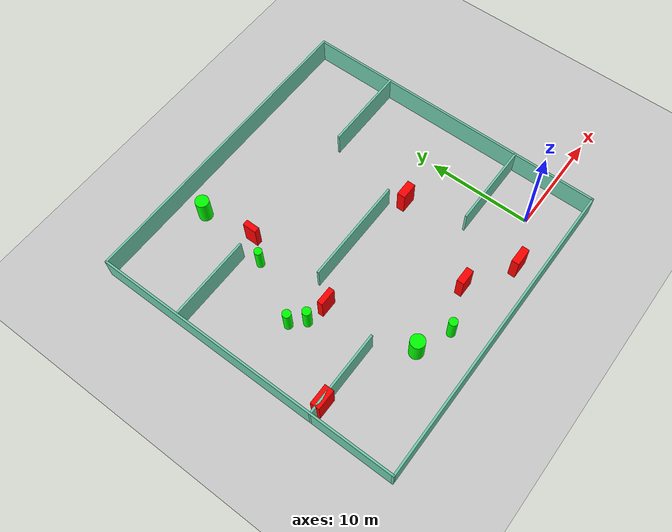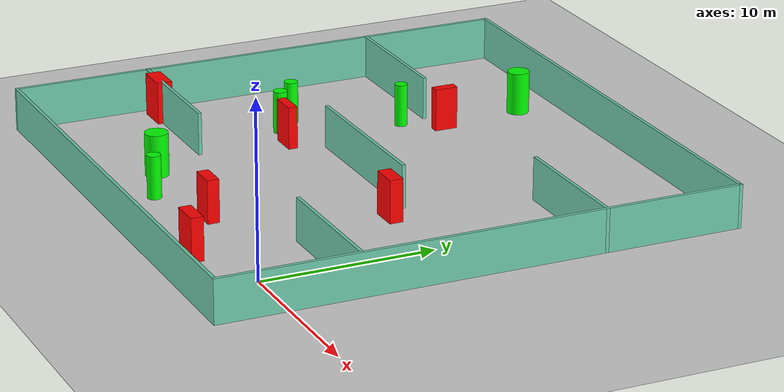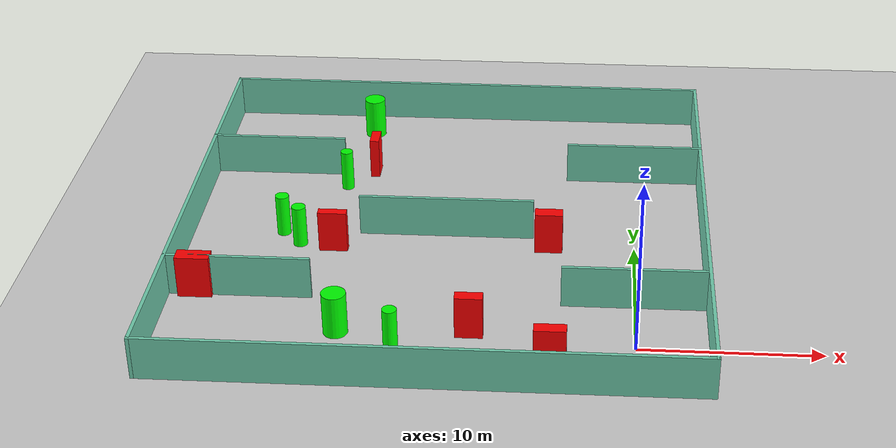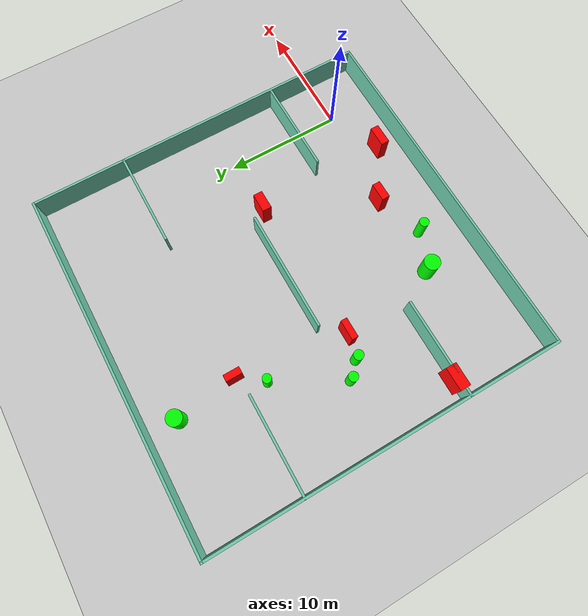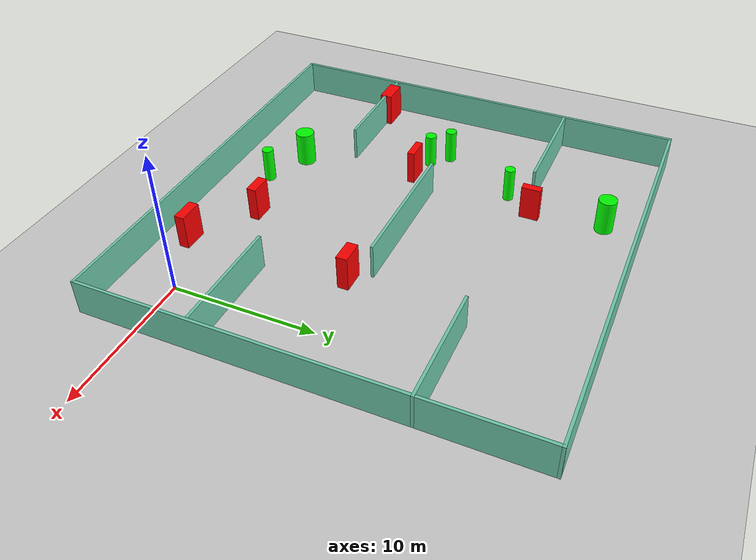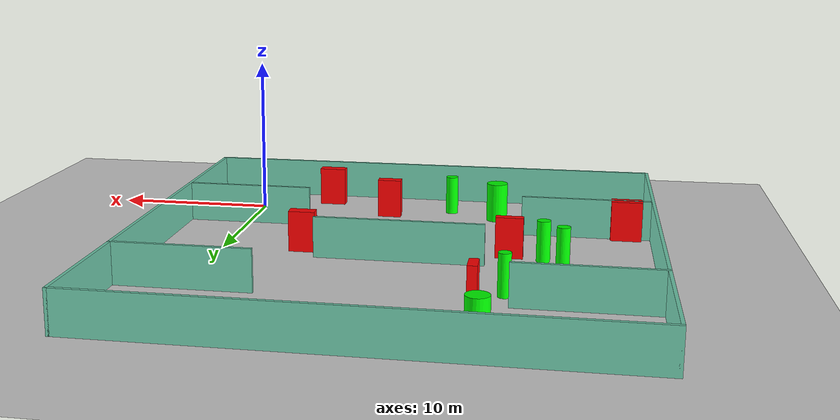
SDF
<sdf version="1.7">
 <world name="default">
  <light name="sun" type="directional">
   <pose>0 0 10 0 -0 0</pose>
   <diffuse>0.8 0.8 0.8 1</diffuse>
   <specular>0.2 0.2 0.2 1</specular>
   <attenuation>
    <range>1000</range>
    <constant>0.9</constant>
    <linear>0.01</linear>
    <quadratic>0.001</quadratic>
   </attenuation>
   <direction>-0.5 0.1 -0.9</direction>
   <spot><inner_angle>0</inner_angle><outer_angle>0</outer_angle><falloff>0</falloff></spot>
  </light>
  <model name="ground_plane">
   <static>1</static>
   <link name="link">
    <collision name="collision">
     <geometry><plane><normal>0 0 1</normal><size>100 100</size></plane></geometry>
     <surface>
      <contact><collide_bitmask>65535</collide_bitmask></contact>
      <friction><ode><mu>100</mu><mu2>50</mu2></ode></friction>
     </surface>
    </collision>
    <visual name="visual">
     <cast_shadows>0</cast_shadows>
     <geometry><plane><normal>0 0 1</normal><size>100 100</size></plane></geometry>
     <material>
      <script><uri>file://media/materials/scripts/gazebo.material</uri><name>Gazebo/Grey</name></script>
     </material>
    </visual>
   </link>
  </model>
  <gravity>0 0 -9.8</gravity>
  <magnetic_field>6e-06 2.3e-05 -4.2e-05</magnetic_field>
  <atmosphere type="adiabatic"/>
  <physics type="ode">
   <max_step_size>0.001</max_step_size>
   <real_time_factor>1</real_time_factor>
   <real_time_update_rate>1000</real_time_update_rate>
  </physics>
  <scene><ambient>0.4 0.4 0.4 1</ambient><background>0.7 0.7 0.7 1</background><shadows>1</shadows></scene>
  <spherical_coordinates>
   <surface_model>EARTH_WGS84</surface_model>
   <latitude_deg>0</latitude_deg>
   <longitude_deg>0</longitude_deg>
   <elevation>0</elevation>
   <heading_deg>0</heading_deg>
  </spherical_coordinates>
  <model name="my_base_walls">
   <link name="Wall_10">
    <collision name="Wall_10_Collision">
     <geometry><box><size>8.2 0.2 2.5</size></box></geometry>
     <pose>0 0 1.25 0 -0 0</pose>
    </collision>
    <visual name="Wall_10_Visual">
     <pose>0 0 1.25 0 -0 0</pose>
     <geometry><box><size>8.2 0.2 2.5</size></box></geometry>
     <material>
      <script><uri>file://media/materials/scripts/gazebo.material</uri><name>Gazebo/Grey</name></script>
      <ambient>0.435294 0.796078 0.67451 1</ambient>
     </material>
     <meta><layer>0</layer></meta>
    </visual>
    <pose>-11 -7 0 0 -0 0</pose>
   </link>
   <link name="Wall_12">
    <collision name="Wall_12_Collision">
     <geometry><box><size>8.2 0.2 2.5</size></box></geometry>
     <pose>0 0 1.25 0 -0 0</pose>
    </collision>
    <visual name="Wall_12_Visual">
     <pose>0 0 1.25 0 -0 0</pose>
     <geometry><box><size>8.2 0.2 2.5</size></box></geometry>
     <material>
      <script><uri>file://media/materials/scripts/gazebo.material</uri><name>Gazebo/Grey</name></script>
      <ambient>0.435294 0.796078 0.67451 1</ambient>
     </material>
     <meta><layer>0</layer></meta>
    </visual>
    <pose>-11 7 0 0 -0 0</pose>
   </link>
   <link name="Wall_14">
    <collision name="Wall_14_Collision">
     <geometry><box><size>8.2 0.2 2.5</size></box></geometry>
     <pose>0 0 1.25 0 -0 0</pose>
    </collision>
    <visual name="Wall_14_Visual">
     <pose>0 0 1.25 0 -0 0</pose>
     <geometry><box><size>8.2 0.2 2.5</size></box></geometry>
     <material>
      <script><uri>file://media/materials/scripts/gazebo.material</uri><name>Gazebo/Grey</name></script>
      <ambient>0.435294 0.796078 0.67451 1</ambient>
     </material>
     <meta><layer>0</layer></meta>
    </visual>
    <pose>11 7 0 0 -0 3.14159</pose>
   </link>
   <link name="Wall_16">
    <collision name="Wall_16_Collision">
     <geometry><box><size>10.2 0.2 2.5</size></box></geometry>
     <pose>0 0 1.25 0 -0 0</pose>
    </collision>
    <visual name="Wall_16_Visual">
     <pose>0 0 1.25 0 -0 0</pose>
     <geometry><box><size>10.2 0.2 2.5</size></box></geometry>
     <material>
      <script><uri>file://media/materials/scripts/gazebo.material</uri><name>Gazebo/Grey</name></script>
      <ambient>0.435294 0.796078 0.67451 1</ambient>
     </material>
     <meta><layer>0</layer></meta>
    </visual>
    <pose>0 0 0 0 -0 3.14159</pose>
   </link>
   <link name="Wall_2">
    <collision name="Wall_2_Collision">
     <geometry><box><size>30.2 0.2 2.5</size></box></geometry>
     <pose>0 0 1.25 0 -0 0</pose>
    </collision>
    <visual name="Wall_2_Visual">
     <pose>0 0 1.25 0 -0 0</pose>
     <geometry><box><size>30.2 0.2 2.5</size></box></geometry>
     <material>
      <script><uri>file://media/materials/scripts/gazebo.material</uri><name>Gazebo/Grey</name></script>
      <ambient>0.435294 0.796078 0.67451 1</ambient>
     </material>
     <meta><layer>0</layer></meta>
    </visual>
    <pose>0 -15 0 0 -0 3.14159</pose>
   </link>
   <link name="Wall_3">
    <collision name="Wall_3_Collision">
     <geometry><box><size>30.2 0.2 2.5</size></box></geometry>
     <pose>0 0 1.25 0 -0 0</pose>
    </collision>
    <visual name="Wall_3_Visual">
     <pose>0 0 1.25 0 -0 0</pose>
     <geometry><box><size>30.2 0.2 2.5</size></box></geometry>
     <material>
      <script><uri>file://media/materials/scripts/gazebo.material</uri><name>Gazebo/Grey</name></script>
      <ambient>0.435294 0.796078 0.67451 1</ambient>
     </material>
     <meta><layer>0</layer></meta>
    </visual>
    <pose>-15 0 0 0 -0 1.5708</pose>
   </link>
   <link name="Wall_4">
    <collision name="Wall_4_Collision">
     <geometry><box><size>30.2 0.2 2.5</size></box></geometry>
     <pose>0 0 1.25 0 -0 0</pose>
    </collision>
    <visual name="Wall_4_Visual">
     <pose>0 0 1.25 0 -0 0</pose>
     <geometry><box><size>30.2 0.2 2.5</size></box></geometry>
     <material>
      <script><uri>file://media/materials/scripts/gazebo.material</uri><name>Gazebo/Grey</name></script>
      <ambient>0.435294 0.796078 0.67451 1</ambient>
     </material>
     <meta><layer>0</layer></meta>
    </visual>
    <pose>0 15 0 0 -0 0</pose>
   </link>
   <link name="Wall_6">
    <collision name="Wall_6_Collision">
     <geometry><box><size>30.2 0.2 2.5</size></box></geometry>
     <pose>0 0 1.25 0 -0 0</pose>
    </collision>
    <visual name="Wall_6_Visual">
     <pose>0 0 1.25 0 -0 0</pose>
     <geometry><box><size>30.2 0.2 2.5</size></box></geometry>
     <material>
      <script><uri>file://media/materials/scripts/gazebo.material</uri><name>Gazebo/Grey</name></script>
      <ambient>0.435294 0.796078 0.67451 1</ambient>
     </material>
     <meta><layer>0</layer></meta>
    </visual>
    <pose>15 0 0 0 -0 1.5708</pose>
   </link>
   <link name="Wall_8">
    <collision name="Wall_8_Collision">
     <geometry><box><size>8.2 0.2 2.5</size></box></geometry>
     <pose>0 0 1.25 0 -0 0</pose>
    </collision>
    <visual name="Wall_8_Visual">
     <pose>0 0 1.25 0 -0 0</pose>
     <geometry><box><size>8.2 0.2 2.5</size></box></geometry>
     <material>
      <script><uri>file://media/materials/scripts/gazebo.material</uri><name>Gazebo/Grey</name></script>
      <ambient>0.435294 0.796078 0.67451 1</ambient>
     </material>
     <meta><layer>0</layer></meta>
    </visual>
    <pose>11 -7 0 0 -0 3.14159</pose>
   </link>
   <static>1</static>
   <pose>-11 11 0 0 -0 0</pose>
  </model>
  <model name="cylinder1">
   <static>1</static>
   <link name="link">
    <inertial>
     <mass>1</mass>
     <inertia><ixx>0.5</ixx><ixy>0</ixy><ixz>0</ixz><iyy>0.5</iyy><iyz>0</iyz><izz>1</izz></inertia>
    </inertial>
    <collision name="collision">
     <geometry><cylinder><radius>0.40839275715560147</radius><length>2.5</length></cylinder></geometry>
    </collision>
    <visual name="visual">
     <geometry><cylinder><radius>0.40839275715560147</radius><length>2.5</length></cylinder></geometry>
     <material>
      <ambient>0 1 0 1</ambient>
      <diffuse>0 1 0 1</diffuse>
      <specular>0.1 0.1 0.1 1</specular>
      <emissive>0 0 0 0</emissive>
     </material>
    </visual>
   </link>
   <pose>-19.439003507530327 9.56513954556675 1.25 0 0 0</pose>
  </model>
  <model name="cylinder2">
   <static>1</static>
   <link name="link">
    <inertial>
     <mass>1</mass>
     <inertia><ixx>0.5</ixx><ixy>0</ixy><ixz>0</ixz><iyy>0.5</iyy><iyz>0</iyz><izz>1</izz></inertia>
    </inertial>
    <collision name="collision">
     <geometry><cylinder><radius>0.36764448057652344</radius><length>2.5</length></cylinder></geometry>
    </collision>
    <visual name="visual">
     <geometry><cylinder><radius>0.36764448057652344</radius><length>2.5</length></cylinder></geometry>
     <material>
      <ambient>0 1 0 1</ambient>
      <diffuse>0 1 0 1</diffuse>
      <specular>0.1 0.1 0.1 1</specular>
      <emissive>0 0 0 0</emissive>
     </material>
    </visual>
   </link>
   <pose>-17.57059554258465 16.3321591535909 1.25 0 0 0</pose>
  </model>
  <model name="cylinder3">
   <static>1</static>
   <link name="link">
    <inertial>
     <mass>1</mass>
     <inertia><ixx>0.5</ixx><ixy>0</ixy><ixz>0</ixz><iyy>0.5</iyy><iyz>0</iyz><izz>1</izz></inertia>
    </inertial>
    <collision name="collision">
     <geometry><cylinder><radius>0.39733039049471786</radius><length>2.5</length></cylinder></geometry>
    </collision>
    <visual name="visual">
     <geometry><cylinder><radius>0.39733039049471786</radius><length>2.5</length></cylinder></geometry>
     <material>
      <ambient>0 1 0 1</ambient>
      <diffuse>0 1 0 1</diffuse>
      <specular>0.1 0.1 0.1 1</specular>
      <emissive>0 0 0 0</emissive>
     </material>
    </visual>
   </link>
   <pose>-20.596170434945996 10.743337893095191 1.25 0 0 0</pose>
  </model>
  <model name="cylinder4">
   <static>1</static>
   <link name="link">
    <inertial>
     <mass>1</mass>
     <inertia><ixx>0.5</ixx><ixy>0</ixy><ixz>0</ixz><iyy>0.5</iyy><iyz>0</iyz><izz>1</izz></inertia>
    </inertial>
    <collision name="collision">
     <geometry><cylinder><radius>0.6415632302150622</radius><length>2.5</length></cylinder></geometry>
    </collision>
    <visual name="visual">
     <geometry><cylinder><radius>0.6415632302150622</radius><length>2.5</length></cylinder></geometry>
     <material>
      <ambient>0 1 0 1</ambient>
      <diffuse>0 1 0 1</diffuse>
      <specular>0.1 0.1 0.1 1</specular>
      <emissive>0 0 0 0</emissive>
     </material>
    </visual>
   </link>
   <pose>-16.714398500472598 23.475206228860554 1.25 0 0 0</pose>
  </model>
  <model name="cylinder5">
   <static>1</static>
   <link name="link">
    <inertial>
     <mass>1</mass>
     <inertia><ixx>0.5</ixx><ixy>0</ixy><ixz>0</ixz><iyy>0.5</iyy><iyz>0</iyz><izz>1</izz></inertia>
    </inertial>
    <collision name="collision">
     <geometry><cylinder><radius>0.674279702739626</radius><length>2.5</length></cylinder></geometry>
    </collision>
    <visual name="visual">
     <geometry><cylinder><radius>0.674279702739626</radius><length>2.5</length></cylinder></geometry>
     <material>
      <ambient>0 1 0 1</ambient>
      <diffuse>0 1 0 1</diffuse>
      <specular>0.1 0.1 0.1 1</specular>
      <emissive>0 0 0 0</emissive>
     </material>
    </visual>
   </link>
   <pose>-16.115023763306862 0.7065742978603411 1.25 0 0 0</pose>
  </model>
  <model name="cylinder6">
   <static>1</static>
   <link name="link">
    <inertial>
     <mass>1</mass>
     <inertia><ixx>0.5</ixx><ixy>0</ixy><ixz>0</ixz><iyy>0.5</iyy><iyz>0</iyz><izz>1</izz></inertia>
    </inertial>
    <collision name="collision">
     <geometry><cylinder><radius>0.3999003812108511</radius><length>2.5</length></cylinder></geometry>
    </collision>
    <visual name="visual">
     <geometry><cylinder><radius>0.3999003812108511</radius><length>2.5</length></cylinder></geometry>
     <material>
      <ambient>0 1 0 1</ambient>
      <diffuse>0 1 0 1</diffuse>
      <specular>0.1 0.1 0.1 1</specular>
      <emissive>0 0 0 0</emissive>
     </material>
    </visual>
   </link>
   <pose>-12.978107546553561 -0.6580832535391989 1.25 0 0 0</pose>
  </model>
  <model name="box1">
   <static>1</static>
   <link name="link">
    <inertial>
     <mass>1</mass>
     <inertia><ixx>0.083</ixx><ixy>0</ixy><ixz>0</ixz><iyy>0.083</iyy><iyz>0</iyz><izz>0.083</izz></inertia>
    </inertial>
    <collision name="collision">
     <geometry><box><size>1.653518104592965 0.532372475471234 2.5</size></box></geometry>
    </collision>
    <visual name="visual">
     <geometry><box><size>1.653518104592965 0.532372475471234 2.5</size></box></geometry>
     <material>
      <ambient>1 0 0 1</ambient>
      <diffuse>1 0 0 1</diffuse>
      <specular>0.1 0.1 0.1 1</specular>
      <emissive>0 0 0 0</emissive>
     </material>
    </visual>
    <sensor name="my_contact" type="contact">
     <contact><collision>box_collision</collision><topic>__default_topic__</topic></contact>
    </sensor>
   </link>
   <pose>-17.41379240294704 9.129357108837533 1.25 0 0 0</pose>
  </model>
  <model name="box2">
   <static>1</static>
   <link name="link">
    <inertial>
     <mass>1</mass>
     <inertia><ixx>0.083</ixx><ixy>0</ixy><ixz>0</ixz><iyy>0.083</iyy><iyz>0</iyz><izz>0.083</izz></inertia>
    </inertial>
    <collision name="collision">
     <geometry><box><size>1.9048957736020247 0.8923318630859618 2.5</size></box></geometry>
    </collision>
    <visual name="visual">
     <geometry><box><size>1.9048957736020247 0.8923318630859618 2.5</size></box></geometry>
     <material>
      <ambient>1 0 0 1</ambient>
      <diffuse>1 0 0 1</diffuse>
      <specular>0.1 0.1 0.1 1</specular>
      <emissive>0 0 0 0</emissive>
     </material>
    </visual>
    <sensor name="my_contact" type="contact">
     <contact><collision>box_collision</collision><topic>__default_topic__</topic></contact>
    </sensor>
   </link>
   <pose>-24.404228019446673 4.060362945224 1.25 0 0 0</pose>
  </model>
  <model name="box3">
   <static>1</static>
   <link name="link">
    <inertial>
     <mass>1</mass>
     <inertia><ixx>0.083</ixx><ixy>0</ixy><ixz>0</ixz><iyy>0.083</iyy><iyz>0</iyz><izz>0.083</izz></inertia>
    </inertial>
    <collision name="collision">
     <geometry><box><size>1.5264418403305682 0.6804681176042957 2.5</size></box></geometry>
    </collision>
    <visual name="visual">
     <geometry><box><size>1.5264418403305682 0.6804681176042957 2.5</size></box></geometry>
     <material>
      <ambient>1 0 0 1</ambient>
      <diffuse>1 0 0 1</diffuse>
      <specular>0.1 0.1 0.1 1</specular>
      <emissive>0 0 0 0</emissive>
     </material>
    </visual>
    <sensor name="my_contact" type="contact">
     <contact><collision>box_collision</collision><topic>__default_topic__</topic></contact>
    </sensor>
   </link>
   <pose>-8.93104145187296 0.8689556460394061 1.25 0 0 0</pose>
  </model>
  <model name="box4">
   <static>1</static>
   <link name="link">
    <inertial>
     <mass>1</mass>
     <inertia><ixx>0.083</ixx><ixy>0</ixy><ixz>0</ixz><iyy>0.083</iyy><iyz>0</iyz><izz>0.083</izz></inertia>
    </inertial>
    <collision name="collision">
     <geometry><box><size>1.6065658381418804 0.7742469788751782 2.5</size></box></geometry>
    </collision>
    <visual name="visual">
     <geometry><box><size>1.6065658381418804 0.7742469788751782 2.5</size></box></geometry>
     <material>
      <ambient>1 0 0 1</ambient>
      <diffuse>1 0 0 1</diffuse>
      <specular>0.1 0.1 0.1 1</specular>
      <emissive>0 0 0 0</emissive>
     </material>
    </visual>
    <sensor name="my_contact" type="contact">
     <contact><collision>box_collision</collision><topic>__default_topic__</topic></contact>
    </sensor>
   </link>
   <pose>-4.968886848555435 9.755810032956848 1.25 0 0 0</pose>
  </model>
  <model name="box5">
   <static>1</static>
   <link name="link">
    <inertial>
     <mass>1</mass>
     <inertia><ixx>0.083</ixx><ixy>0</ixy><ixz>0</ixz><iyy>0.083</iyy><iyz>0</iyz><izz>0.083</izz></inertia>
    </inertial>
    <collision name="collision">
     <geometry><box><size>1.725994630209018 0.7119559962937893 2.5</size></box></geometry>
    </collision>
    <visual name="visual">
     <geometry><box><size>1.725994630209018 0.7119559962937893 2.5</size></box></geometry>
     <material>
      <ambient>1 0 0 1</ambient>
      <diffuse>1 0 0 1</diffuse>
      <specular>0.1 0.1 0.1 1</specular>
      <emissive>0 0 0 0</emissive>
     </material>
    </visual>
    <sensor name="my_contact" type="contact">
     <contact><collision>box_collision</collision><topic>__default_topic__</topic></contact>
    </sensor>
   </link>
   <pose>-4.515803175741107 -1.8479008392384468 1.25 0 0 0</pose>
  </model>
  <model name="box6">
   <static>1</static>
   <link name="link">
    <inertial>
     <mass>1</mass>
     <inertia><ixx>0.083</ixx><ixy>0</ixy><ixz>0</ixz><iyy>0.083</iyy><iyz>0</iyz><izz>0.083</izz></inertia>
    </inertial>
    <collision name="collision">
     <geometry><box><size>0.5563733241923853 1.3434152194582698 2.5</size></box></geometry>
    </collision>
    <visual name="visual">
     <geometry><box><size>0.5563733241923853 1.3434152194582698 2.5</size></box></geometry>
     <material>
      <ambient>1 0 0 1</ambient>
      <diffuse>1 0 0 1</diffuse>
      <specular>0.1 0.1 0.1 1</specular>
      <emissive>0 0 0 0</emissive>
     </material>
    </visual>
    <sensor name="my_contact" type="contact">
     <contact><collision>box_collision</collision><topic>__default_topic__</topic></contact>
    </sensor>
   </link>
   <pose>-16.05592483021607 18.374862813377263 1.25 0 0 0</pose>
  </model>
 </world>
</sdf>
